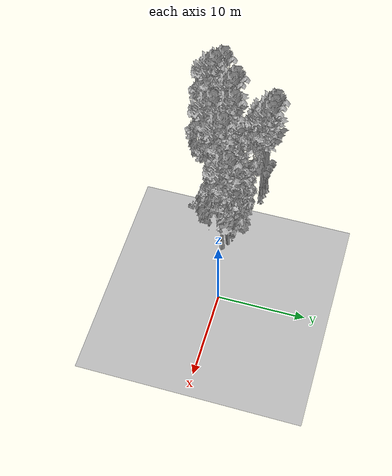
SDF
<sdf version="1.7">
 <world name="default">
  <model name="ground_plane">
   <static>1</static>
   <link name="link">
    <collision name="collision">
     <pose>-50 0 0 0 -0 0</pose>
     <geometry><plane><normal>0 0 1</normal><size>80 80</size></plane></geometry>
     <surface><contact><ode><min_depth>0.01</min_depth><max_vel>0</max_vel></ode></contact></surface>
    </collision>
    <visual name="grass">
     <cast_shadows>0</cast_shadows>
     <geometry>
      <mesh>
       <scale>0.46714285714285714 0.46714285714285714 0.1</scale>
       <uri>file://grass_plane/meshes/grass_plane.dae</uri>
      </mesh>
     </geometry>
    </visual>
   </link>
  </model>
  <model name="Tree 27">
   <static>1</static>
   <pose>-20.996689875617964 -5.953197715988658 0 1.57079 -0 0</pose>
   <link name="link">
    <collision name="collision">
     <geometry><mesh><scale>3.5 5 3.5</scale><uri>model://tree_9/meshes/tree_9.obj</uri></mesh></geometry>
    </collision>
    <visual name="visual">
     <geometry><mesh><scale>3.5 5 3.5</scale><uri>model://tree_9/meshes/tree_9.obj</uri></mesh></geometry>
    </visual>
   </link>
  </model>
  <model name="Tree 56">
   <static>1</static>
   <pose>-17.499120480065635 -4.0009516435432175 0 1.57079 -0 0</pose>
   <link name="link">
    <collision name="collision">
     <geometry><mesh><scale>3.5 5 3.5</scale><uri>model://tree_9/meshes/tree_9.obj</uri></mesh></geometry>
    </collision>
    <visual name="visual">
     <geometry><mesh><scale>3.5 5 3.5</scale><uri>model://tree_9/meshes/tree_9.obj</uri></mesh></geometry>
    </visual>
   </link>
  </model>
  <model name="Tree 154">
   <static>1</static>
   <pose>-14.532844313133761 1.1170150574143065 0 1.57079 -0 0</pose>
   <link name="link">
    <collision name="collision">
     <geometry><mesh><scale>3.5 5 3.5</scale><uri>model://tree_9/meshes/tree_9.obj</uri></mesh></geometry>
    </collision>
    <visual name="visual">
     <geometry><mesh><scale>3.5 5 3.5</scale><uri>model://tree_9/meshes/tree_9.obj</uri></mesh></geometry>
    </visual>
   </link>
  </model>
  <model name="Tree 168">
   <static>1</static>
   <pose>-18.4529247606204 -3.7736782730672473 0 1.57079 -0 0</pose>
   <link name="link">
    <collision name="collision">
     <geometry><mesh><scale>3.5 5 3.5</scale><uri>model://tree_9/meshes/tree_9.obj</uri></mesh></geometry>
    </collision>
    <visual name="visual">
     <geometry><mesh><scale>3.5 5 3.5</scale><uri>model://tree_9/meshes/tree_9.obj</uri></mesh></geometry>
    </visual>
   </link>
  </model>
  <model name="Tree 282">
   <static>1</static>
   <pose>-20.075235008774946 -6.817868597194604 0 1.57079 -0 0</pose>
   <link name="link">
    <collision name="collision">
     <geometry><mesh><scale>3.5 5 3.5</scale><uri>model://tree_9/meshes/tree_9.obj</uri></mesh></geometry>
    </collision>
    <visual name="visual">
     <geometry><mesh><scale>3.5 5 3.5</scale><uri>model://tree_9/meshes/tree_9.obj</uri></mesh></geometry>
    </visual>
   </link>
  </model>
  <model name="Tree 291">
   <static>1</static>
   <pose>-15.389019674225136 -1.51228225110291 0 1.57079 -0 0</pose>
   <link name="link">
    <collision name="collision">
     <geometry><mesh><scale>3.5 5 3.5</scale><uri>model://tree_2/meshes/tree_2.obj</uri></mesh></geometry>
    </collision>
    <visual name="visual">
     <geometry><mesh><scale>3.5 5 3.5</scale><uri>model://tree_2/meshes/tree_2.obj</uri></mesh></geometry>
    </visual>
   </link>
  </model>
  <model name="Tree 318">
   <static>1</static>
   <pose>-15.486464317657994 1.2232456430529766 0 1.57079 -0 0</pose>
   <link name="link">
    <collision name="collision">
     <geometry><mesh><scale>3.5 5 3.5</scale><uri>model://tree_9/meshes/tree_9.obj</uri></mesh></geometry>
    </collision>
    <visual name="visual">
     <geometry><mesh><scale>3.5 5 3.5</scale><uri>model://tree_9/meshes/tree_9.obj</uri></mesh></geometry>
    </visual>
   </link>
  </model>
  <model name="Tree 319">
   <static>1</static>
   <pose>-16.305392428573676 1.390411671303994 0 1.57079 -0 0</pose>
   <link name="link">
    <collision name="collision">
     <geometry><mesh><scale>3.5 5 3.5</scale><uri>model://tree_9/meshes/tree_9.obj</uri></mesh></geometry>
    </collision>
    <visual name="visual">
     <geometry><mesh><scale>3.5 5 3.5</scale><uri>model://tree_9/meshes/tree_9.obj</uri></mesh></geometry>
    </visual>
   </link>
  </model>
  <model name="Tree 325">
   <static>1</static>
   <pose>-6.468892305004758 -1.3959305661810717 0 1.57079 -0 0</pose>
   <link name="link">
    <collision name="collision">
     <geometry><mesh><scale>3.5 5 3.5</scale><uri>model://tree_9/meshes/tree_9.obj</uri></mesh></geometry>
    </collision>
    <visual name="visual">
     <geometry><mesh><scale>3.5 5 3.5</scale><uri>model://tree_9/meshes/tree_9.obj</uri></mesh></geometry>
    </visual>
   </link>
  </model>
  <model name="Tree 432">
   <static>1</static>
   <pose>-8.702652307003408 -1.3976479885844313 0 1.57079 -0 0</pose>
   <link name="link">
    <collision name="collision">
     <geometry><mesh><scale>3.5 5 3.5</scale><uri>model://tree_2/meshes/tree_2.obj</uri></mesh></geometry>
    </collision>
    <visual name="visual">
     <geometry><mesh><scale>3.5 5 3.5</scale><uri>model://tree_2/meshes/tree_2.obj</uri></mesh></geometry>
    </visual>
   </link>
  </model>
  <model name="Tree 439">
   <static>1</static>
   <pose>-11.505892969882641 -3.481818835387216 0 1.57079 -0 0</pose>
   <link name="link">
    <collision name="collision">
     <geometry><mesh><scale>3.5 5 3.5</scale><uri>model://tree_9/meshes/tree_9.obj</uri></mesh></geometry>
    </collision>
    <visual name="visual">
     <geometry><mesh><scale>3.5 5 3.5</scale><uri>model://tree_9/meshes/tree_9.obj</uri></mesh></geometry>
    </visual>
   </link>
  </model>
  <model name="Tree 456">
   <static>1</static>
   <pose>-14.249083079888301 -5.431183306324712 0 1.57079 -0 0</pose>
   <link name="link">
    <collision name="collision">
     <geometry><mesh><scale>3.5 5 3.5</scale><uri>model://tree_9/meshes/tree_9.obj</uri></mesh></geometry>
    </collision>
    <visual name="visual">
     <geometry><mesh><scale>3.5 5 3.5</scale><uri>model://tree_9/meshes/tree_9.obj</uri></mesh></geometry>
    </visual>
   </link>
  </model>
  <model name="Tree 480">
   <static>1</static>
   <pose>-16.05031904457224 -4.495450071686278 0 1.57079 -0 0</pose>
   <link name="link">
    <collision name="collision">
     <geometry><mesh><scale>3.5 5 3.5</scale><uri>model://tree_2/meshes/tree_2.obj</uri></mesh></geometry>
    </collision>
    <visual name="visual">
     <geometry><mesh><scale>3.5 5 3.5</scale><uri>model://tree_2/meshes/tree_2.obj</uri></mesh></geometry>
    </visual>
   </link>
  </model>
  <model name="Tree 617">
   <static>1</static>
   <pose>-7.29720786926211 -0.9620012892947472 0 1.57079 -0 0</pose>
   <link name="link">
    <collision name="collision">
     <geometry><mesh><scale>3.5 5 3.5</scale><uri>model://tree_2/meshes/tree_2.obj</uri></mesh></geometry>
    </collision>
    <visual name="visual">
     <geometry><mesh><scale>3.5 5 3.5</scale><uri>model://tree_2/meshes/tree_2.obj</uri></mesh></geometry>
    </visual>
   </link>
  </model>
  <model name="Tree 619">
   <static>1</static>
   <pose>-15.020105755453397 -3.1775478903767294 0 1.57079 -0 0</pose>
   <link name="link">
    <collision name="collision">
     <geometry><mesh><scale>3.5 5 3.5</scale><uri>model://tree_9/meshes/tree_9.obj</uri></mesh></geometry>
    </collision>
    <visual name="visual">
     <geometry><mesh><scale>3.5 5 3.5</scale><uri>model://tree_9/meshes/tree_9.obj</uri></mesh></geometry>
    </visual>
   </link>
  </model>
  <model name="Bush 2">
   <static>1</static>
   <pose>-18.126456519646887 -1.9793642355753462 0 1.57079 -0 0</pose>
   <link name="link">
    <collision name="collision">
     <geometry><mesh><scale>2 2 2</scale><uri>model://bush_2/meshes/bush_2.obj</uri></mesh></geometry>
     <surface><contact><collide_without_contact>false</collide_without_contact></contact></surface>
    </collision>
    <visual name="visual">
     <geometry><mesh><scale>2 2 2</scale><uri>model://bush_2/meshes/bush_2.obj</uri></mesh></geometry>
    </visual>
   </link>
  </model>
  <model name="Bush 22">
   <static>1</static>
   <pose>-15.615336191170428 -0.781783110609986 0 1.57079 -0 0</pose>
   <link name="link">
    <collision name="collision">
     <geometry><mesh><scale>2 2 2</scale><uri>model://bush_2/meshes/bush_2.obj</uri></mesh></geometry>
     <surface><contact><collide_without_contact>false</collide_without_contact></contact></surface>
    </collision>
    <visual name="visual">
     <geometry><mesh><scale>2 2 2</scale><uri>model://bush_2/meshes/bush_2.obj</uri></mesh></geometry>
    </visual>
   </link>
  </model>
  <model name="Bush 80">
   <static>1</static>
   <pose>-12.788027617158075 0.13782232935973582 0 1.57079 -0 0</pose>
   <link name="link">
    <collision name="collision">
     <geometry><mesh><scale>2 2 2</scale><uri>model://bush_2/meshes/bush_2.obj</uri></mesh></geometry>
     <surface><contact><collide_without_contact>false</collide_without_contact></contact></surface>
    </collision>
    <visual name="visual">
     <geometry><mesh><scale>2 2 2</scale><uri>model://bush_2/meshes/bush_2.obj</uri></mesh></geometry>
    </visual>
   </link>
  </model>
  <model name="Bush 265">
   <static>1</static>
   <pose>-14.858562847436446 -5.525287376822341 0 1.57079 -0 0</pose>
   <link name="link">
    <collision name="collision">
     <geometry><mesh><scale>2 2 2</scale><uri>model://bush_1/meshes/bush_1.obj</uri></mesh></geometry>
     <surface><contact><collide_without_contact>false</collide_without_contact></contact></surface>
    </collision>
    <visual name="visual">
     <geometry><mesh><scale>2 2 2</scale><uri>model://bush_1/meshes/bush_1.obj</uri></mesh></geometry>
    </visual>
   </link>
  </model>
  <model name="Bush 425">
   <static>1</static>
   <pose>-10.49950994734522 -4.311852697891268 0 1.57079 -0 0</pose>
   <link name="link">
    <collision name="collision">
     <geometry><mesh><scale>2 2 2</scale><uri>model://bush_2/meshes/bush_2.obj</uri></mesh></geometry>
     <surface><contact><collide_without_contact>false</collide_without_contact></contact></surface>
    </collision>
    <visual name="visual">
     <geometry><mesh><scale>2 2 2</scale><uri>model://bush_2/meshes/bush_2.obj</uri></mesh></geometry>
    </visual>
   </link>
  </model>
  <model name="Bush 477">
   <static>1</static>
   <pose>-8.119331924768591 -0.747131182907296 0 1.57079 -0 0</pose>
   <link name="link">
    <collision name="collision">
     <geometry><mesh><scale>2 2 2</scale><uri>model://bush_4/meshes/bush_4.obj</uri></mesh></geometry>
     <surface><contact><collide_without_contact>false</collide_without_contact></contact></surface>
    </collision>
    <visual name="visual">
     <geometry><mesh><scale>2 2 2</scale><uri>model://bush_4/meshes/bush_4.obj</uri></mesh></geometry>
    </visual>
   </link>
  </model>
  <model name="Bush 484">
   <static>1</static>
   <pose>-11.318230515865231 -6.501501495032301 0 1.57079 -0 0</pose>
   <link name="link">
    <collision name="collision">
     <geometry><mesh><scale>2 2 2</scale><uri>model://bush_2/meshes/bush_2.obj</uri></mesh></geometry>
     <surface><contact><collide_without_contact>false</collide_without_contact></contact></surface>
    </collision>
    <visual name="visual">
     <geometry><mesh><scale>2 2 2</scale><uri>model://bush_2/meshes/bush_2.obj</uri></mesh></geometry>
    </visual>
   </link>
  </model>
  <model name="Bush 486">
   <static>1</static>
   <pose>-11.190120514133 -4.169340493961471 0 1.57079 -0 0</pose>
   <link name="link">
    <collision name="collision">
     <geometry><mesh><scale>2 2 2</scale><uri>model://bush_2/meshes/bush_2.obj</uri></mesh></geometry>
     <surface><contact><collide_without_contact>false</collide_without_contact></contact></surface>
    </collision>
    <visual name="visual">
     <geometry><mesh><scale>2 2 2</scale><uri>model://bush_2/meshes/bush_2.obj</uri></mesh></geometry>
    </visual>
   </link>
  </model>
 </world>
</sdf>
